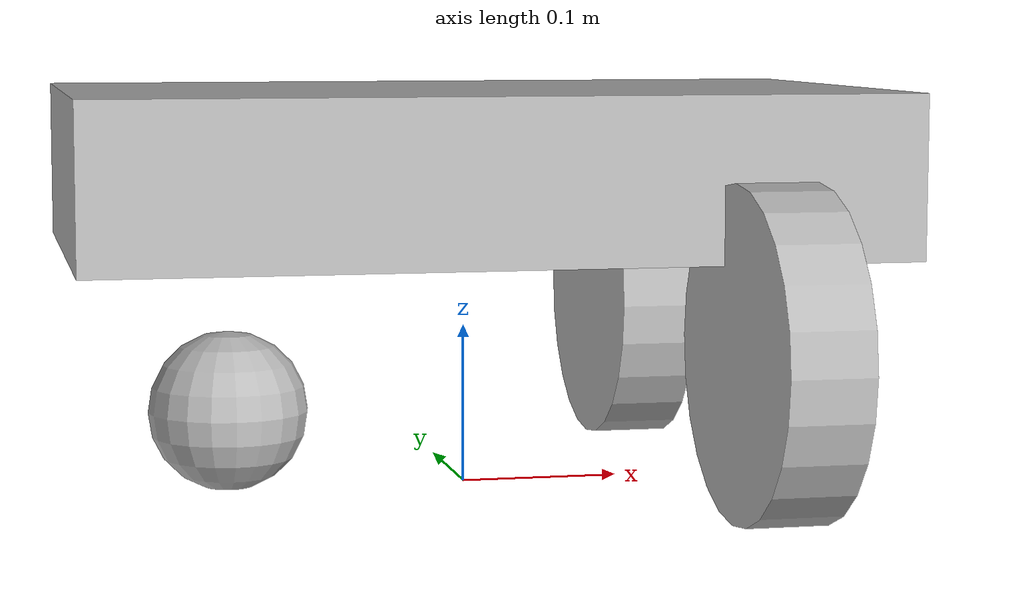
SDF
<?xml version='1.0'?>
<sdf version='1.6'>
  <model name='rover'>
    <link name='base_link'>
      <pose>0 0 0.2 0 0 0</pose>
      <inertial>
        <mass>5.0</mass>
        <inertia>
          <ixx>0.08</ixx>
          <ixy>0</ixy>
          <ixz>0</ixz>
          <iyy>0.1</iyy>
          <iyz>0</iyz>
          <izz>0.1</izz>
        </inertia>
      </inertial>
      <collision name='collision'>
        <geometry>
          <box><size>0.5 0.3 0.1</size></box>
        </geometry>
      </collision>
      <visual name='visual'>
        <geometry>
          <box><size>0.5 0.3 0.1</size></box>
        </geometry>
      </visual>
      <sensor name='imu_sensor' type='imu'>
        <always_on>1</always_on>
        <update_rate>100</update_rate>
      </sensor>
    </link>

    <!-- Wheels -->
    <link name='left_wheel'>
      <pose>0.15 0.17 0.1 0 1.5707 0</pose>
      <inertial><mass>0.5</mass><inertia><ixx>0.001</ixx><iyy>0.001</iyy><izz>0.002</izz></inertia></inertial>
      <collision name='collision'><geometry><cylinder><radius>0.1</radius><length>0.05</length></cylinder></geometry></collision>
      <visual name='visual'><geometry><cylinder><radius>0.1</radius><length>0.05</length></cylinder></geometry></visual>
    </link>
    <link name='right_wheel'>
      <pose>0.15 -0.17 0.1 0 1.5707 0</pose>
      <inertial><mass>0.5</mass><inertia><ixx>0.001</ixx><iyy>0.001</iyy><izz>0.002</izz></inertia></inertial>
      <collision name='collision'><geometry><cylinder><radius>0.1</radius><length>0.05</length></cylinder></geometry></collision>
      <visual name='visual'><geometry><cylinder><radius>0.1</radius><length>0.05</length></cylinder></geometry></visual>
    </link>
    <link name='caster_wheel'>
        <pose>-0.15 0 0.05 0 0 0</pose>
        <inertial><mass>0.2</mass><inertia><ixx>0.0001</ixx><ixy>0</ixy><ixz>0</ixz><iyy>0.0001</iyy><iyz>0</iyz><izz>0.0001</izz></inertia></inertial>
        <collision name='collision'><geometry><sphere><radius>0.05</radius></sphere></geometry></collision>
        <visual name='visual'><geometry><sphere><radius>0.05</radius></sphere></geometry></visual>
    </link>

    <!-- Joints -->
    <joint name='left_wheel_joint' type='revolute'><parent>base_link</parent><child>left_wheel</child><axis><xyz>0 1 0</xyz></axis></joint>
    <joint name='right_wheel_joint' type='revolute'><parent>base_link</parent><child>right_wheel</child><axis><xyz>0 1 0</xyz></axis></joint>
    <joint name='caster_wheel_joint' type='ball'><parent>base_link</parent><child>caster_wheel</child></joint>

    <!-- ArduPilot Plugin -->
    <plugin name='ardupilot_plugin' filename='libArduPilotPlugin.so'>
      <modelName>rover</modelName>
      <imuName>imu_sensor</imuName>
      <control>
        <motor>
            <jointName>left_wheel_joint</jointName>
            <motorType>throttle</motorType>
            <motorChannel>1</motorChannel>
        </motor>
        <motor>
            <jointName>right_wheel_joint</jointName>
            <motorType>throttle</motorType>
            <motorChannel>3</motorChannel>
        </motor>
      </control>
    </plugin>
  </model>
</sdf>
